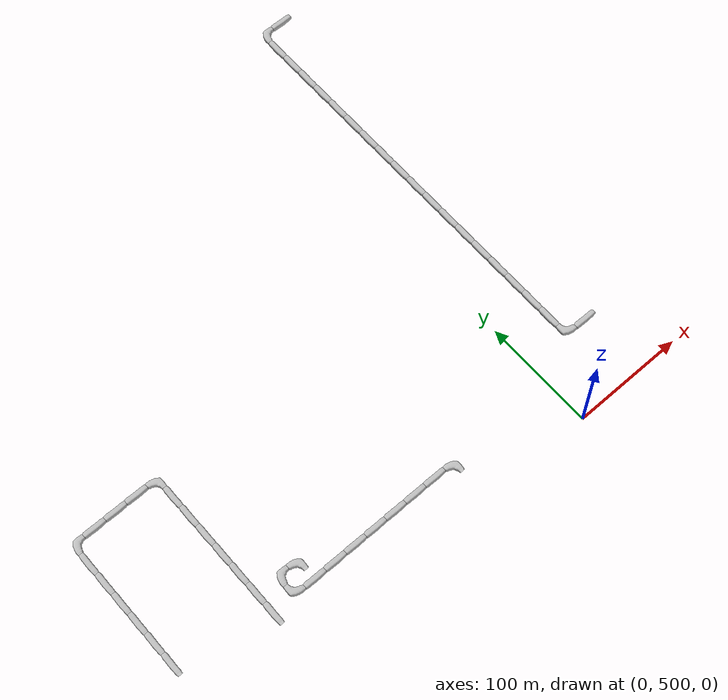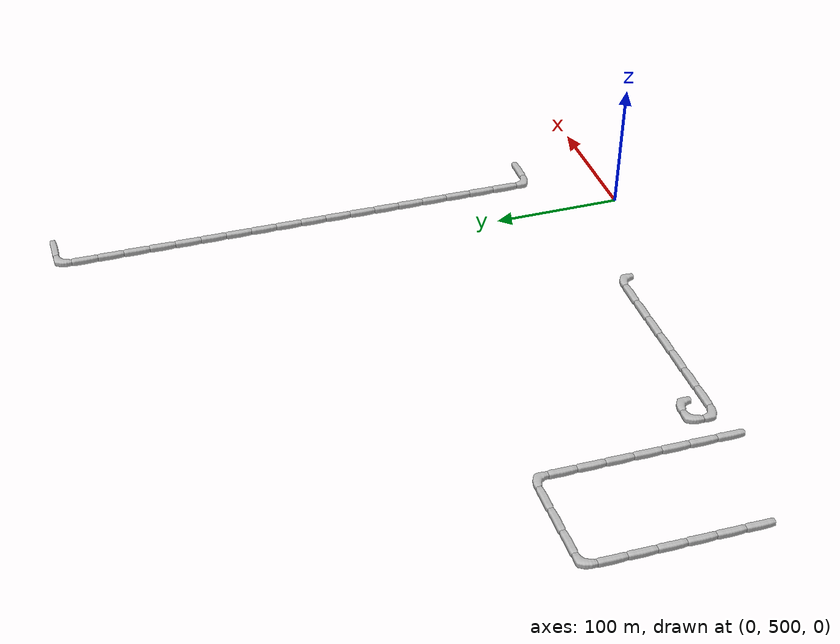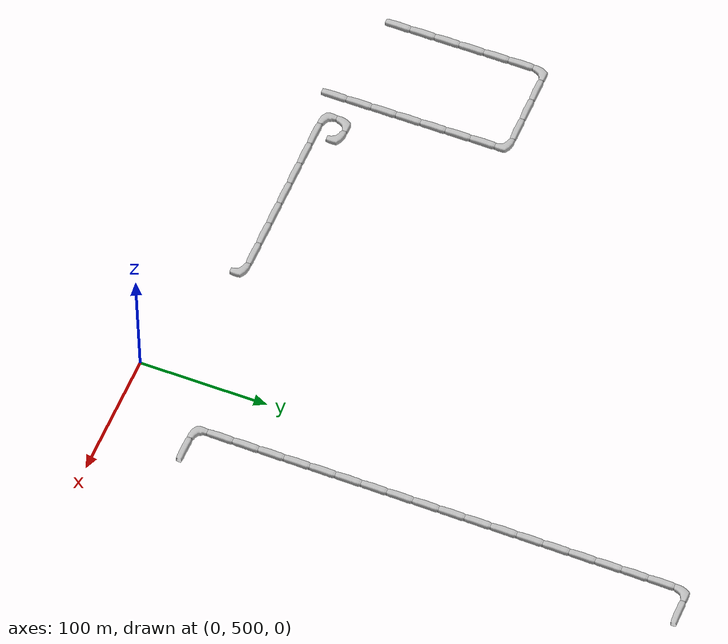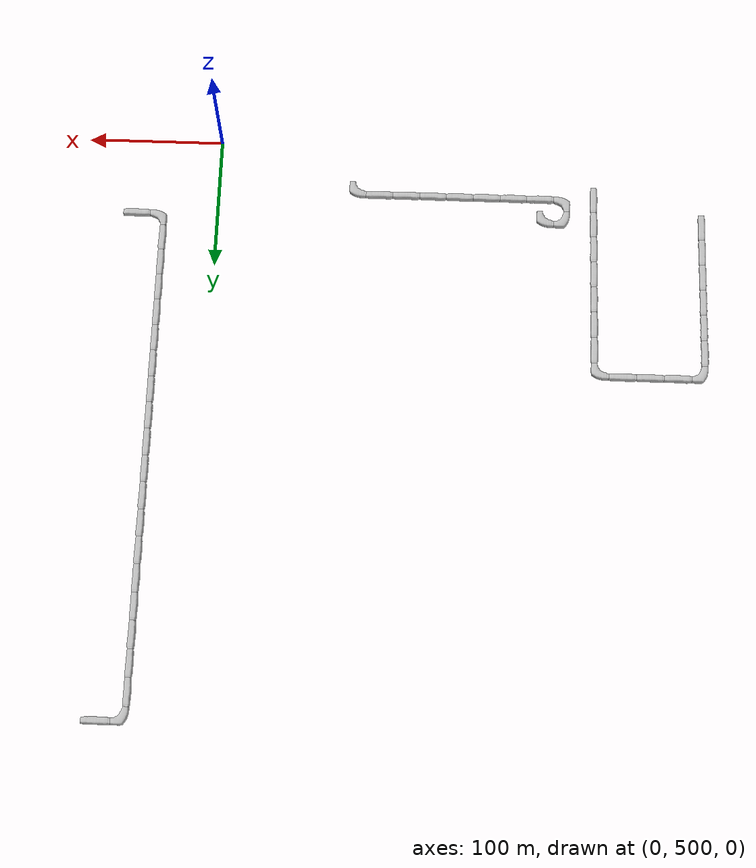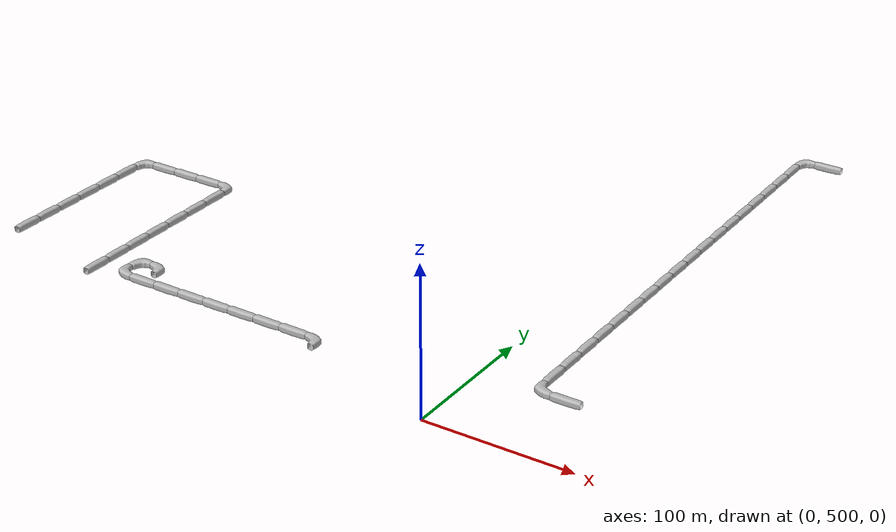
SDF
<sdf version="1.6">
 <world name="cave_16000_2">
  <include>
   <static>true</static>
   <name>cave_-18_28</name>
   <pose>-360 560 0 0 0 0.0</pose>
   <uri>model://cave_straight_20m</uri>
  </include>
  <include>
   <static>true</static>
   <name>cave_-18_29</name>
   <pose>-360 580 0 0 0 0.0</pose>
   <uri>model://cave_straight_20m</uri>
  </include>
  <include>
   <static>true</static>
   <name>cave_-18_30</name>
   <pose>-360 600 0 0 0 0.0</pose>
   <uri>model://cave_straight_20m</uri>
  </include>
  <include>
   <static>true</static>
   <name>cave_-18_31</name>
   <pose>-360 620 0 0 0 0.0</pose>
   <uri>model://cave_straight_20m</uri>
  </include>
  <include>
   <static>true</static>
   <name>cave_-18_32</name>
   <pose>-360 640 0 0 0 0.0</pose>
   <uri>model://cave_straight_20m</uri>
  </include>
  <include>
   <static>true</static>
   <name>cave_-18_33</name>
   <pose>-360 660 0 0 0 0.0</pose>
   <uri>model://cave_straight_20m</uri>
  </include>
  <include>
   <static>true</static>
   <name>cave_-18_34</name>
   <pose>-360 680 0 0 0 -1.5707963267948966</pose>
   <uri>model://cave_L_20m</uri>
  </include>
  <include>
   <static>true</static>
   <name>cave_-17_34</name>
   <pose>-340 680 0 0 0 1.5707963267948966</pose>
   <uri>model://cave_straight_20m</uri>
  </include>
  <include>
   <static>true</static>
   <name>cave_-16_34</name>
   <pose>-320 680 0 0 0 1.5707963267948966</pose>
   <uri>model://cave_straight_20m</uri>
  </include>
  <include>
   <static>true</static>
   <name>cave_-15_34</name>
   <pose>-300 680 0 0 0 1.5707963267948966</pose>
   <uri>model://cave_straight_20m</uri>
  </include>
  <include>
   <static>true</static>
   <name>cave_-14_34</name>
   <pose>-280 680 0 0 0 3.141592653589793</pose>
   <uri>model://cave_L_20m</uri>
  </include>
  <include>
   <static>true</static>
   <name>cave_-14_33</name>
   <pose>-280 660 0 0 0 0.0</pose>
   <uri>model://cave_straight_20m</uri>
  </include>
  <include>
   <static>true</static>
   <name>cave_-14_32</name>
   <pose>-280 640 0 0 0 0.0</pose>
   <uri>model://cave_straight_20m</uri>
  </include>
  <include>
   <static>true</static>
   <name>cave_-14_31</name>
   <pose>-280 620 0 0 0 0.0</pose>
   <uri>model://cave_straight_20m</uri>
  </include>
  <include>
   <static>true</static>
   <name>cave_-14_30</name>
   <pose>-280 600 0 0 0 0.0</pose>
   <uri>model://cave_straight_20m</uri>
  </include>
  <include>
   <static>true</static>
   <name>cave_-14_29</name>
   <pose>-280 580 0 0 0 0.0</pose>
   <uri>model://cave_straight_20m</uri>
  </include>
  <include>
   <static>true</static>
   <name>cave_-14_28</name>
   <pose>-280 560 0 0 0 0.0</pose>
   <uri>model://cave_straight_20m</uri>
  </include>
  <include>
   <static>true</static>
   <name>cave_-14_27</name>
   <pose>-280 540 0 0 0 0.0</pose>
   <uri>model://cave_straight_20m</uri>
  </include>
  <include>
   <static>true</static>
   <name>cave_-5_27</name>
   <pose>-100 540 0 0 0 3.141592653589793</pose>
   <uri>model://cave_L_20m</uri>
  </include>
  <include>
   <static>true</static>
   <name>cave_-6_27</name>
   <pose>-120 540 0 0 0 1.5707963267948966</pose>
   <uri>model://cave_straight_20m</uri>
  </include>
  <include>
   <static>true</static>
   <name>cave_-7_27</name>
   <pose>-140 540 0 0 0 1.5707963267948966</pose>
   <uri>model://cave_straight_20m</uri>
  </include>
  <include>
   <static>true</static>
   <name>cave_-8_27</name>
   <pose>-160 540 0 0 0 1.5707963267948966</pose>
   <uri>model://cave_straight_20m</uri>
  </include>
  <include>
   <static>true</static>
   <name>cave_-9_27</name>
   <pose>-180 540 0 0 0 1.5707963267948966</pose>
   <uri>model://cave_straight_20m</uri>
  </include>
  <include>
   <static>true</static>
   <name>cave_-10_27</name>
   <pose>-200 540 0 0 0 1.5707963267948966</pose>
   <uri>model://cave_straight_20m</uri>
  </include>
  <include>
   <static>true</static>
   <name>cave_-11_27</name>
   <pose>-220 540 0 0 0 1.5707963267948966</pose>
   <uri>model://cave_straight_20m</uri>
  </include>
  <include>
   <static>true</static>
   <name>cave_-12_27</name>
   <pose>-240 540 0 0 0 1.5707963267948966</pose>
   <uri>model://cave_straight_20m</uri>
  </include>
  <include>
   <static>true</static>
   <name>cave_-13_27</name>
   <pose>-260 540 0 0 0 0.0</pose>
   <uri>model://cave_L_20m</uri>
  </include>
  <include>
   <static>true</static>
   <name>cave_-13_28</name>
   <pose>-260 560 0 0 0 -1.5707963267948966</pose>
   <uri>model://cave_L_20m</uri>
  </include>
  <include>
   <static>true</static>
   <name>cave_-12_28</name>
   <pose>-240 560 0 0 0 3.141592653589793</pose>
   <uri>model://cave_L_20m</uri>
  </include>
  <include>
   <static>true</static>
   <name>cave_3_28</name>
   <pose>60 560 0 0 0 1.5707963267948966</pose>
   <uri>model://cave_straight_20m</uri>
  </include>
  <include>
   <static>true</static>
   <name>cave_2_28</name>
   <pose>40 560 0 0 0 0.0</pose>
   <uri>model://cave_L_20m</uri>
  </include>
  <include>
   <static>true</static>
   <name>cave_2_29</name>
   <pose>40 580 0 0 0 0.0</pose>
   <uri>model://cave_straight_20m</uri>
  </include>
  <include>
   <static>true</static>
   <name>cave_2_30</name>
   <pose>40 600 0 0 0 0.0</pose>
   <uri>model://cave_straight_20m</uri>
  </include>
  <include>
   <static>true</static>
   <name>cave_2_31</name>
   <pose>40 620 0 0 0 0.0</pose>
   <uri>model://cave_straight_20m</uri>
  </include>
  <include>
   <static>true</static>
   <name>cave_2_32</name>
   <pose>40 640 0 0 0 0.0</pose>
   <uri>model://cave_straight_20m</uri>
  </include>
  <include>
   <static>true</static>
   <name>cave_2_33</name>
   <pose>40 660 0 0 0 0.0</pose>
   <uri>model://cave_straight_20m</uri>
  </include>
  <include>
   <static>true</static>
   <name>cave_2_34</name>
   <pose>40 680 0 0 0 0.0</pose>
   <uri>model://cave_straight_20m</uri>
  </include>
  <include>
   <static>true</static>
   <name>cave_2_35</name>
   <pose>40 700 0 0 0 0.0</pose>
   <uri>model://cave_straight_20m</uri>
  </include>
  <include>
   <static>true</static>
   <name>cave_2_36</name>
   <pose>40 720 0 0 0 0.0</pose>
   <uri>model://cave_straight_20m</uri>
  </include>
  <include>
   <static>true</static>
   <name>cave_2_37</name>
   <pose>40 740 0 0 0 0.0</pose>
   <uri>model://cave_straight_20m</uri>
  </include>
  <include>
   <static>true</static>
   <name>cave_2_38</name>
   <pose>40 760 0 0 0 0.0</pose>
   <uri>model://cave_straight_20m</uri>
  </include>
  <include>
   <static>true</static>
   <name>cave_2_39</name>
   <pose>40 780 0 0 0 0.0</pose>
   <uri>model://cave_straight_20m</uri>
  </include>
  <include>
   <static>true</static>
   <name>cave_2_40</name>
   <pose>40 800 0 0 0 0.0</pose>
   <uri>model://cave_straight_20m</uri>
  </include>
  <include>
   <static>true</static>
   <name>cave_2_41</name>
   <pose>40 820 0 0 0 0.0</pose>
   <uri>model://cave_straight_20m</uri>
  </include>
  <include>
   <static>true</static>
   <name>cave_2_42</name>
   <pose>40 840 0 0 0 0.0</pose>
   <uri>model://cave_straight_20m</uri>
  </include>
  <include>
   <static>true</static>
   <name>cave_2_43</name>
   <pose>40 860 0 0 0 0.0</pose>
   <uri>model://cave_straight_20m</uri>
  </include>
  <include>
   <static>true</static>
   <name>cave_2_44</name>
   <pose>40 880 0 0 0 0.0</pose>
   <uri>model://cave_straight_20m</uri>
  </include>
  <include>
   <static>true</static>
   <name>cave_2_45</name>
   <pose>40 900 0 0 0 0.0</pose>
   <uri>model://cave_straight_20m</uri>
  </include>
  <include>
   <static>true</static>
   <name>cave_2_46</name>
   <pose>40 920 0 0 0 0.0</pose>
   <uri>model://cave_straight_20m</uri>
  </include>
  <include>
   <static>true</static>
   <name>cave_2_47</name>
   <pose>40 940 0 0 0 -1.5707963267948966</pose>
   <uri>model://cave_L_20m</uri>
  </include>
  <include>
   <static>true</static>
   <name>cave_3_47</name>
   <pose>60 940 0 0 0 1.5707963267948966</pose>
   <uri>model://cave_straight_20m</uri>
  </include>
 </world>
</sdf>
